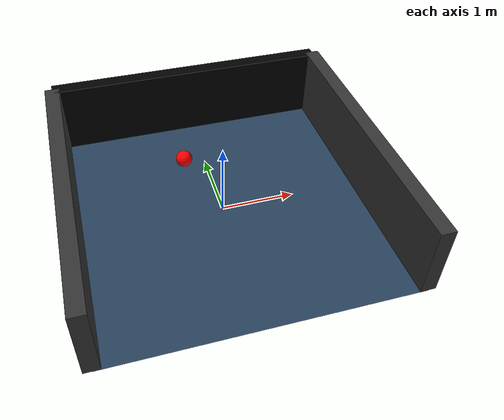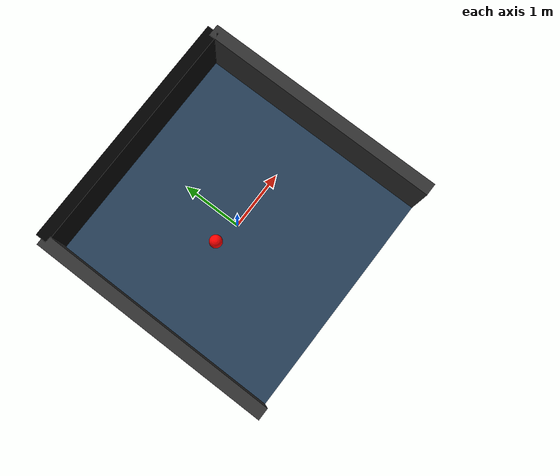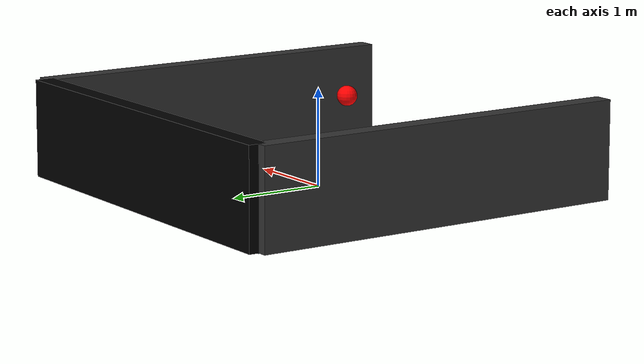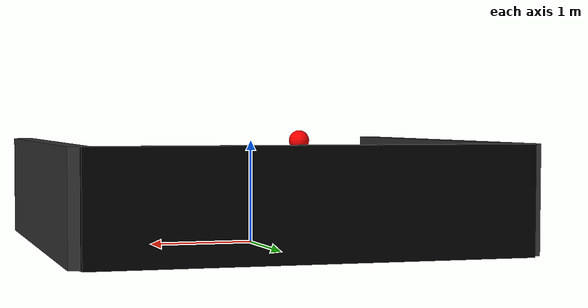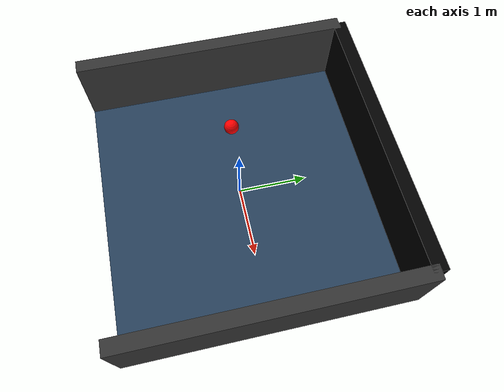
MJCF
<mujoco>
  <visual>
    <headlight ambient=".4 .4 .4" diffuse=".8 .8 .8" specular="0.1 0.1 0.1"/>
    <map znear=".01"/>
    <quality shadowsize="2048"/>
  </visual>
  <asset>
    <texture name="skybox" type="skybox" builtin="gradient" rgb1=".4 .6 .8" rgb2="0 0 0"
             width="800" height="800" mark="random" markrgb="1 1 1"/>
  </asset>
  <asset>
    <texture name="grid" type="2d" builtin="checker" rgb1=".1 .2 .3" rgb2=".2 .3 .4"
             width="300" height="300" mark="edge" markrgb=".2 .3 .4"/>
    <material name="grid" texture="grid" texrepeat="1 1" texuniform="true" reflectance=".2"/>
  </asset>

  <!-- Set timestep, use RK4 integrator for higher accuracy, and enable gravity -->
  <option timestep="0.001" gravity="0 0 0" iterations="1" solver="Newton" integrator="Euler" />

  <worldbody>
    <body name="ground" pos="0 0 0">
      <geom type="plane" size="2 2 0.1" material="grid"
          friction="0 0 0"
          condim="1"
          solref="0.002 0"
          solimp="0.9999 0.9999 0.00005 0.5 2">
      </geom>
    </body>
    <body name="ball" pos="-0.5 0 1">
      <joint type="free"/>
      <geom type="sphere" size="0.1" mass="0.1" rgba="1 0 0 1"/>
    </body>

    <!-- Containing walls -->
    <body name="wall_north" pos="0 2 0.5">
      <geom type="box" size="2 0.1 0.5" rgba="0 0 0 1" friction="0 0 0"
          condim="1"/>
    </body>
    <body name="wall_east" pos="2 0 0.5">
      <geom type="box" size="0.1 2 0.5" rgba="0.2 0.2 0.2 1" friction="0 0 0"
          solref="0.002 0"
          solimp="0.9999 0.9999 0.00005 0.5 2"/>
    </body>
    <body name="wall_west" pos="-2 0 0.5">
      <geom type="box" size="0.1 2 0.5" rgba="0.2 0.2 0.2 1" friction="0 0 0"
          condim="1"/>
    </body>
  </worldbody>
</mujoco>
